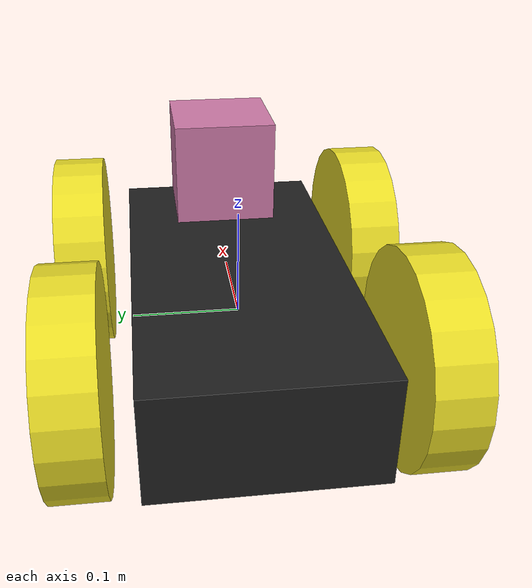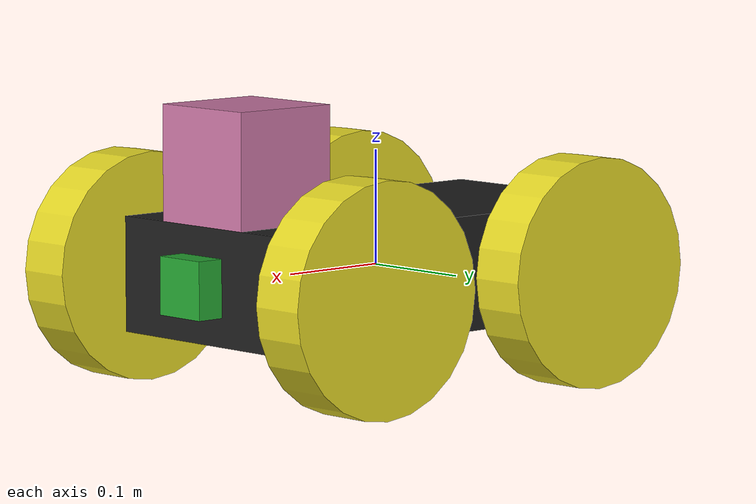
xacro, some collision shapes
<?xml version='1.0'?>

<robot name="myrobot" xmlns:xacro="http://www.ros.org/wiki/xacro">

  <xacro:property name="cameraSize" value="0.05"/>
  <xacro:property name="cameraMass" value="0.1"/>

  <xacro:include filename="$(find spcbot_description)/urdf/materials.xacro"/>
  <xacro:include filename="$(find spcbot_description)/urdf/spcbot.gazebo"/>

  <link name='chassis'>
    <pose>0 0 0.1 0 0 0</pose>

    <inertial>
      <mass value="5.0"/>
      <origin xyz="0.0 0 0.1" rpy=" 0 0 0"/>
      <inertia
          ixx="0.1" ixy="0" ixz="0"
          iyy="0.1" iyz="0"
          izz="0.1"
      />
    </inertial>

    <collision name='collision'>
      <geometry>
        <box size=".4 .2 .1"/>
      </geometry>
    </collision>

    <visual name='chassis_visual'>
      <origin xyz="0 0 0" rpy=" 0 0 0"/>
      <geometry>
        <box size=".4 .2 .1"/>
      </geometry>
      <material name="black"/>
    </visual>

  </link>

  <link name="left_wheel_back">
    <!--origin xyz="0.1 0.13 0.1" rpy="0 1.5707 1.5707"/-->
    <collision name="collision">
      <origin xyz="0 0 0" rpy="0 1.5707 1.5707"/>
      <geometry>
        <cylinder radius="0.1" length="0.05"/>
      </geometry>
    </collision>
    <visual name="left_wheel_visual">
      <origin xyz="0 0 0" rpy="0 1.5707 1.5707"/>
      <geometry>
        <cylinder radius="0.1" length="0.05"/>
      </geometry>
      <material name="yellow"/>
    </visual>
    <inertial>
      <origin xyz="0 0 0" rpy="0 1.5707 1.5707"/>
      <mass value="5"/>
      <inertia
        ixx=".1" ixy="0.0" ixz="0.0"
        iyy=".1" iyz="0.0"
        izz=".1"/>
    </inertial>
  </link>

  <link name="right_wheel_back">
    <!--origin xyz="0.1 -0.13 0.1" rpy="0 1.5707 1.5707"/-->
    <collision name="collision">
      <origin xyz="0 0 0" rpy="0 1.5707 1.5707"/>
      <geometry>
        <cylinder radius="0.1" length="0.05"/>
      </geometry>
    </collision>
    <visual name="right_wheel_visual">
      <origin xyz="0 0 0" rpy="0 1.5707 1.5707"/>
      <geometry>
        <cylinder radius="0.1" length="0.05"/>
      </geometry>
      <material name="yellow"/>
    </visual>
    <inertial>
      <origin xyz="0 0 0" rpy="0 1.5707 1.5707"/>
      <mass value="5"/>
      <inertia
        ixx=".1" ixy="0.0" ixz="0.0"
        iyy=".1" iyz="0.0"
        izz=".1"/>
    </inertial>
  </link>

  <joint type="continuous" name="left_wheel_hinge_back">
    <origin xyz="-0.10 0.15 0" rpy="0 0 0"/>
    <!--origin xyz="0.1 0.13 0" rpy="0 1.5707 1.5707"/-->
    <child link="left_wheel_back"/>
    <parent link="chassis"/>
    <axis xyz="0 1 0" rpy="0 0 0"/>
    <joint_properties damping="0.0" friction="0.0"/>
  </joint>

  <joint type="continuous" name="right_wheel_hinge_back">
    <origin xyz="-0.10 -0.15 0" rpy="0 0 0"/>
    <!--origin xyz="0.1 -0.13 0" rpy="0 1.5707 1.5707"/-->
    <child link="right_wheel_back"/>
    <parent link="chassis"/>
    <axis xyz="0 1 0" rpy="0 0 0"/>
    <joint_properties damping="0.0" friction="0.0"/>
  </joint>

  <link name="left_wheel_front">
    <!--origin xyz="0.1 0.13 0.1" rpy="0 1.5707 1.5707"/-->
    <collision name="collision">
      <origin xyz="0 0 0" rpy="0 1.5707 1.5707"/>
      <geometry>
        <cylinder radius="0.1" length="0.05"/>
      </geometry>
    </collision>
    <visual name="left_wheel_visual">
      <origin xyz="0 0 0" rpy="0 1.5707 1.5707"/>
      <geometry>
        <cylinder radius="0.1" length="0.05"/>
      </geometry>
      <material name="yellow"/>
    </visual>
    <inertial>
      <origin xyz="0 0 0" rpy="0 1.5707 1.5707"/>
      <mass value="5"/>
      <inertia
        ixx=".1" ixy="0.0" ixz="0.0"
        iyy=".1" iyz="0.0"
        izz=".1"/>
    </inertial>
  </link>

  <link name="right_wheel_front">
    <!--origin xyz="0.1 -0.13 0.1" rpy="0 1.5707 1.5707"/-->
    <collision name="collision">
      <origin xyz="0 0 0" rpy="0 1.5707 1.5707"/>
      <geometry>
        <cylinder radius="0.1" length="0.05"/>
      </geometry>
    </collision>
    <visual name="right_wheel_visual">
      <origin xyz="0 0 0" rpy="0 1.5707 1.5707"/>
      <geometry>
        <cylinder radius="0.1" length="0.05"/>
      </geometry>
      <material name="yellow"/>
    </visual>
    <inertial>
      <origin xyz="0 0 0" rpy="0 1.5707 1.5707"/>
      <mass value="5"/>
      <inertia
        ixx=".1" ixy="0.0" ixz="0.0"
        iyy=".1" iyz="0.0"
        izz=".1"/>
    </inertial>
  </link>

  <joint type="continuous" name="left_wheel_hinge_front">
    <origin xyz="0.15 0.15 0" rpy="0 0 0"/>
    <!--origin xyz="0.1 0.13 0" rpy="0 1.5707 1.5707"/-->
    <child link="left_wheel_front"/>
    <parent link="chassis"/>
    <axis xyz="0 1 0" rpy="0 0 0"/>
    <joint_properties damping="0.0" friction="0.0"/>
  </joint>

  <joint type="continuous" name="right_wheel_hinge_front">
    <origin xyz="0.15 -0.15 0" rpy="0 0 0"/>
    <!--origin xyz="0.1 -0.13 0" rpy="0 1.5707 1.5707"/-->
    <child link="right_wheel_front"/>
    <parent link="chassis"/>
    <axis xyz="0 1 0" rpy="0 0 0"/>
    <joint_properties damping="0.0" friction="0.0"/>
  </joint>

  <link name="camera_link">
    <collision>
      <origin xyz="0 0 0" rpy="0 0 0"/>
      <geometry>
        <box size="${cameraSize} ${cameraSize} ${cameraSize}"/>
      </geometry>
    </collision>

    <visual>
      <origin xyz="0 0 0" rpy="0 0 0"/>
      <geometry>
        <box size="${cameraSize} ${cameraSize} ${cameraSize}"/>
      </geometry>
      <material name="green"/>
    </visual>

    <inertial>
      <mass value="${cameraMass}" />
      <origin xyz="0 0 0" rpy="0 0 0"/>
      <box_inertia m="${cameraMass}" x="${cameraSize}" y="${cameraSize}" z="${cameraSize}" />
      <inertia ixx="1e-6" ixy="0" ixz="0" iyy="1e-6" iyz="0" izz="1e-6" />
    </inertial>
  </link>

  <joint name="camera_joint" type="fixed">
    <axis xyz="0 1 0" />
    <origin xyz=".2 0 0" rpy="0 0 0"/>
    <parent link="chassis"/>
    <child link="camera_link"/>
  </joint>

  <!-- Hokuyo Laser -->
  <link name="hokuyo_link">
    <collision>
      <origin xyz="0 0 0" rpy="0 0 0"/>
      <geometry>
    <box size="0.1 0.1 0.1"/>
      </geometry>
    </collision>

    <visual>
      <origin xyz="0 0 0" rpy="0 0 0"/>
      <geometry>
        <mesh filename="package://spcbot_description/meshes/hokuyo.dae"/>
      </geometry>
    </visual>

    <inertial>
      <mass value="1e-5" />
      <origin xyz="0 0 0" rpy="0 0 0"/>
      <inertia ixx="1e-6" ixy="0" ixz="0" iyy="1e-6" iyz="0" izz="1e-6" />
    </inertial>
  </link>

  <joint name="hokuyo_joint" type="fixed">
    <axis xyz="0 1 0" />
    <origin xyz="0.15 0 0.1" rpy="0 0 0"/>
    <parent link="chassis"/>
    <child link="hokuyo_link"/>
  </joint>

</robot>
